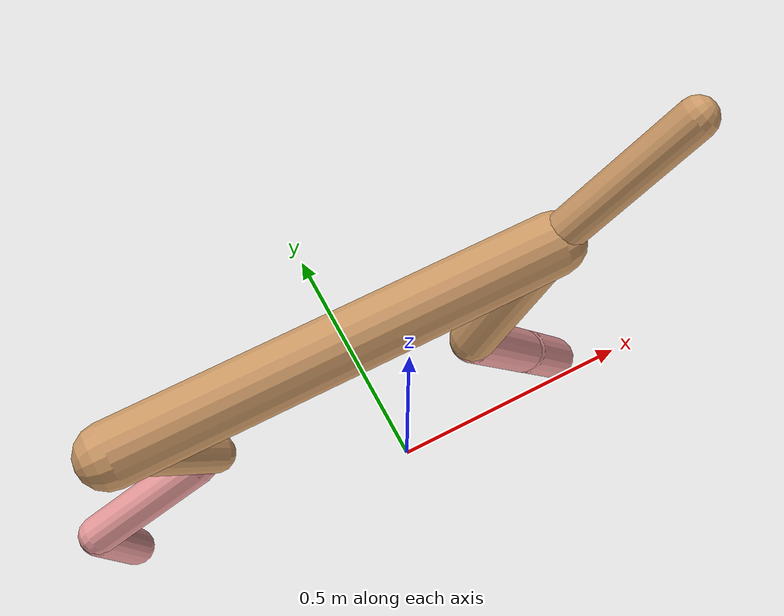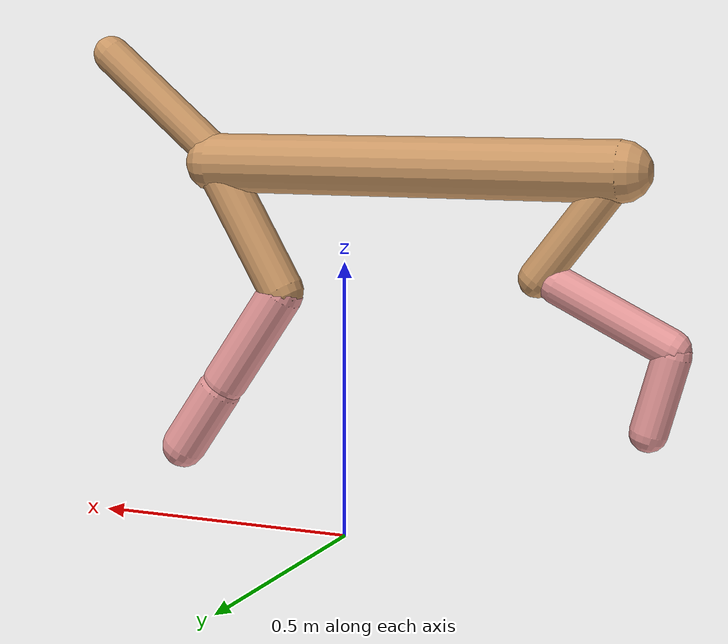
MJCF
<mujoco model="cheetah">
  <compiler angle="radian" coordinate="local" inertiafromgeom="true" settotalmass="14" />
  <default>
    <joint armature=".1" damping=".01" limited="true" solimplimit="0 .8 .03" solreflimit=".02 1" stiffness="8" />
    <geom conaffinity="0" condim="3" contype="1" friction="0.8 .1 .1" rgba="0.8 0.6 .4 1" solimp="0.0 0.8 0.01" solref="0.02 1" />
    <motor ctrllimited="true" ctrlrange="-1 1" />
  </default>
  <size nstack="300000" nuser_geom="1" />
  <option gravity="0 0 -9.81" timestep="0.01" />
  <worldbody>
    <body name="torso" pos="0.0 0.0 0.6726656650649352">
      <joint armature="0" axis="1 0 0" damping="0" limited="false" name="ignorex" pos="0 0 0" stiffness="0" type="slide" />
      <joint armature="0" axis="0 0 1" damping="0" limited="false" name="ignorez" pos="0 0 0" stiffness="0" type="slide" />
      <joint armature="0" axis="0 1 0" damping="0" limited="false" name="ignorey" pos="0 0 0" stiffness="0" type="hinge" />
      <geom fromto="-0.5 0.0 0.0 0.25810059504402333 0.0 0.0" name="torso" size="0.05322947290465008" type="capsule" />
      <geom axisangle="0 1 0 .87" name="head" pos="0.35810059504402336 0.0 0.1" size="0.03418597183975315 0.15" type="capsule" />

      <body name="bthigh" pos="-.5 0 0">
        <joint axis="0 1 0" damping="6" name="bthigh" pos="0 0 0" range="-.52 1.05" stiffness="240" type="hinge" />
        <geom axisangle="0 1 0 -3.8" name="bthigh" pos="0.07684155039957516 0.0 -0.09989401551944771" size="0.03325889612099378 0.10701731855912916" type="capsule" />
        <body name="bshin" pos="0.11368310079915031 0.0 -0.1897880310388954">
          <joint axis="0 1 0" damping="4.5" name="bshin" pos="0 0 0" range="-.785 .785" stiffness="180" type="hinge" />
          <geom axisangle="0 1 0 -2.03" name="bshin" pos="-0.10485578303330753 0.0 -0.052427891516653766" rgba="0.9 0.6 0.6 1" size="0.03325889612099378 0.11070757092323706" type="capsule" />
          <body name="bfoot" pos="-0.20971156606661506 0.0 -0.10485578303330753">
            <joint axis="0 1 0" damping="3" name="bfoot" pos="0 0 0" range="-.4 .785" stiffness="120" type="hinge" />
            <geom axisangle="0 1 0 -.27" name="bfoot" pos="0.022724573503792422 0.0 -0.0734761209955955" rgba="0.9 0.6 0.6 1" size="0.03325889612099378 0.06937674444522857" type="capsule" />
            <inertial mass="10" />
          </body>
        </body>
      </body>
      <body name="fthigh" pos="0.2581005950440234 0.0 0.0">
        <joint axis="0 1 0" damping="4.5" name="fthigh" pos="0 0 0" range="-1.5 0.8" stiffness="180" type="hinge" />
        <geom axisangle="0 1 0 .52" name="fthigh" pos="-0.06808388466843647 0.0 -0.1167152308601768" size="0.04133449180063174 0.1291972107255611" type="capsule" />
        <body name="fshin" pos="-0.13616776933687294 0.0 -0.2334304617203536">
          <joint axis="0 1 0" damping="3" name="fshin" pos="0 0 0" range="-1.2 1.1" stiffness="120" type="hinge" />
          <geom axisangle="0 1 0 -.6" name="fshin" pos="0.06322549847342007 0.0 -0.08754299788627394" rgba="0.9 0.6 0.6 1" size="0.04133449180063174 0.10296920554067274" type="capsule" />
          <body name="ffoot" pos="0.12645099694684014 0.0 -0.17508599577254788">
            <joint axis="0 1 0" damping="1.5" name="ffoot" pos="0 0 0" range="-3.1 -0.3" stiffness="60" type="hinge" />
            <geom axisangle="0 1 0 -.6" name="ffoot" pos="0.043917690964042945 0.0 -0.06831640816628903" rgba="0.9 0.6 0.6 1" size="0.04133449180063174 0.06799853196082163" type="capsule" />
            <inertial mass="10" />
          </body>
        </body>
      </body>
    </body>
  </worldbody>
  <actuator>
    <motor gear="120" joint="bthigh" name="bthigh" />
    <motor gear="90" joint="bshin" name="bshin" />
    <motor gear="60" joint="bfoot" name="bfoot" />
    <motor gear="120" joint="fthigh" name="fthigh" />
    <motor gear="60" joint="fshin" name="fshin" />
    <motor gear="30" joint="ffoot" name="ffoot" />
  </actuator>
</mujoco>
